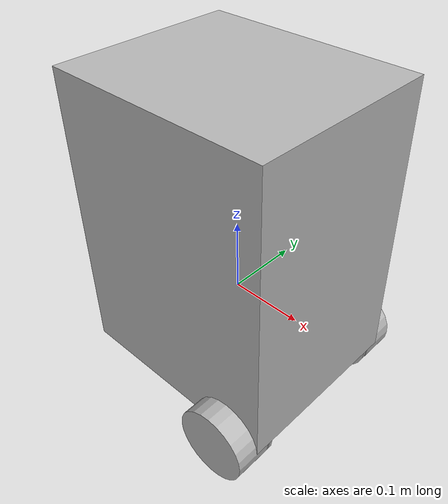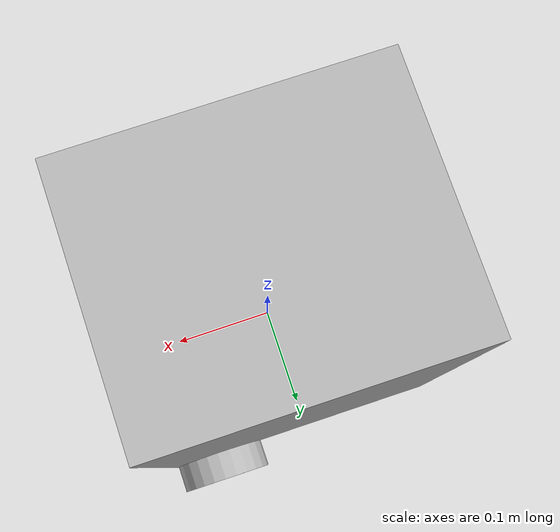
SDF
<?xml version='1.0'?>
<sdf version='1.4'>
  <model name="robot">
    <static>false</static>

    <link name="chassis">
      <pose>0 0 .1 0 0 0</pose>
      <gravity>true</gravity>

      <inertial>
        <pose>0 0 0 0 0 0</pose>
        <mass>5</mass>
        <inertia>
          <ixx>0.092708</ixx>
          <ixy>0</ixy>
          <ixz>0</ixz>
          <iyy>0.104167</iyy>
          <iyz>0</iyz>
          <izz>0.063542</izz>
        </inertia>
      </inertial>

      <collision name="collision">
        <geometry>
          <box>
            <size>.3 .25 .4</size>
          </box>
        </geometry>
      </collision>

      <visual name="visual">
        <pose>0 0 0 0 0 0</pose>
        <geometry>
          <box>
            <size>.3 .25 .4</size>
          </box>
        </geometry>
      </visual>

      <collision name="caster_collision">
        <pose>-0.075 0 -0.2 0 0 0</pose>
        <geometry>
          <sphere>
            <radius>.05</radius>
          </sphere>
        </geometry>

        <surface>
          <friction>
            <ode>
              <mu>0</mu>
              <mu2>0</mu2>
              <slip1>1.0</slip1>
              <slip2>1.0</slip2>
            </ode>
          </friction>
        </surface>
      </collision>

      <visual name="caster_visual">
        <pose>-0.075 0 -0.2 0 0 0</pose>
        <geometry>
          <sphere>
            <radius>.05</radius>
          </sphere>
        </geometry>
      </visual>
    </link>

    <link name="left_wheel">
      <pose>0.1 0.13 -0.1 0 1.5707 1.5707</pose>
      <gravity>true</gravity>

      <inertial>
        <pose>0 0 0 0 0 0</pose>
        <mass>0.3</mass>
        <inertia>
          <ixx>0.00025</ixx>
          <ixy>0</ixy>
          <ixz>0</ixz>
          <iyy>0.00025</iyy>
          <iyz>0</iyz>
          <izz>0.000375</izz>
        </inertia>
      </inertial>

      <collision name="collision">
        <geometry>
          <cylinder>
            <radius>.05</radius>
            <length>.05</length>
          </cylinder>
        </geometry>
      </collision>

      <visual name="visual">
        <geometry>
          <cylinder>
            <radius>.05</radius>
            <length>.05</length>
          </cylinder>
        </geometry>
      </visual>
    </link>

    <joint type="revolute" name="left_wheel_hinge">
      <child>left_wheel</child>
      <parent>chassis</parent>
      <axis>
        <xyz>0 1 0</xyz>
      </axis>
    </joint>

    <link name="left_encoder_wheel">
      <pose>0.1 0.1 -0.1 0 1.5707 1.5707</pose>
      <gravity>true</gravity>

      <inertial>
        <pose>0 0 0 0 0 0</pose>
        <mass>0.03</mass>
        <inertia>
          <ixx>0.000019</ixx>
          <ixy>0</ixy>
          <ixz>0</ixz>
          <iyy>0.000019</iyy>
          <iyz>0</iyz>
          <izz>0.000038</izz>
        </inertia>
      </inertial>

      <collision name="collision">
        <geometry>
          <cylinder>
            <radius>.05</radius>
            <length>.005</length>
          </cylinder>
        </geometry>

        <surface>
          <friction>
            <ode>
              <mu>1</mu>
              <mu2>1</mu2>
              <slip1>0</slip1>
              <slip2>0</slip2>
            </ode>
          </friction>
        </surface>
      </collision>

      <visual name="visual">
        <geometry>
          <cylinder>
            <radius>.05</radius>
            <length>.005</length>
          </cylinder>
        </geometry>
      </visual>
    </link>

    <joint type="revolute" name="left_encoder">
      <child>left_encoder_wheel</child>
      <parent>chassis</parent>
      <axis>
        <xyz>0 1 0</xyz>
      </axis>
    </joint>

    <link name="right_wheel">
      <pose>0.1 -0.13 -0.1 0 1.5707 1.5707</pose>
      <gravity>true</gravity>

      <inertial>
        <pose>0 0 0 0 0 0</pose>
        <mass>0.3</mass>
        <inertia>
          <ixx>0.00025</ixx>
          <ixy>0</ixy>
          <ixz>0</ixz>
          <iyy>0.00025</iyy>
          <iyz>0</iyz>
          <izz>0.000375</izz>
        </inertia>
      </inertial>

      <collision name="collision">
        <geometry>
          <cylinder>
            <radius>.05</radius>
            <length>.05</length>
          </cylinder>
        </geometry>
      </collision>

      <visual name="visual">
        <geometry>
          <cylinder>
            <radius>.05</radius>
            <length>.05</length>
          </cylinder>
        </geometry>
      </visual>
    </link>

    <joint type="revolute" name="right_wheel_hinge">
      <child>right_wheel</child>
      <parent>chassis</parent>
      <axis>
        <xyz>0 1 0</xyz>
      </axis>
    </joint>

    <link name="right_encoder_wheel">
      <pose>0.1 -0.1 -0.1 0 1.5707 1.5707</pose>
      <gravity>true</gravity>

      <inertial>
        <pose>0 0 0 0 0 0</pose>
        <mass>0.03</mass>
        <inertia>
          <ixx>0.000019</ixx>
          <ixy>0</ixy>
          <ixz>0</ixz>
          <iyy>0.000019</iyy>
          <iyz>0</iyz>
          <izz>0.000038</izz>
        </inertia>
      </inertial>

      <collision name="collision">
        <geometry>
          <cylinder>
            <radius>.05</radius>
            <length>.005</length>
          </cylinder>
        </geometry>

        <surface>
          <friction>
            <ode>
              <mu>1</mu>
              <mu2>1</mu2>
              <slip1>0</slip1>
              <slip2>0</slip2>
            </ode>
          </friction>
        </surface>
      </collision>

      <visual name="visual">
        <geometry>
          <cylinder>
            <radius>.05</radius>
            <length>.005</length>
          </cylinder>
        </geometry>
      </visual>
    </link>

    <joint type="revolute" name="right_encoder">
      <child>right_encoder_wheel</child>
      <parent>chassis</parent>
      <axis>
        <xyz>0 1 0</xyz>
      </axis>
    </joint>

    <plugin name="encoder" filename="libencoder_plugin.so">
      <topic>~/encoders</topic>
    </plugin>

    <plugin name="motor_plugin" filename="libmotor_plugin.so">
      <topic>~/motors_control</topic>
      <multiplier>1</multiplier>
    </plugin>
  </model>
</sdf>
